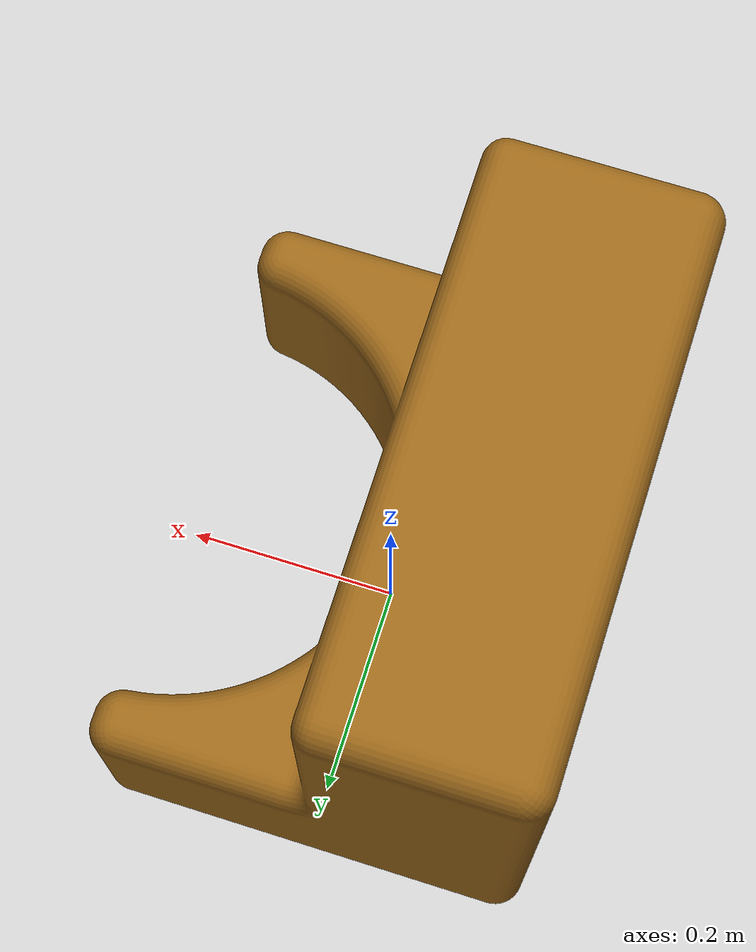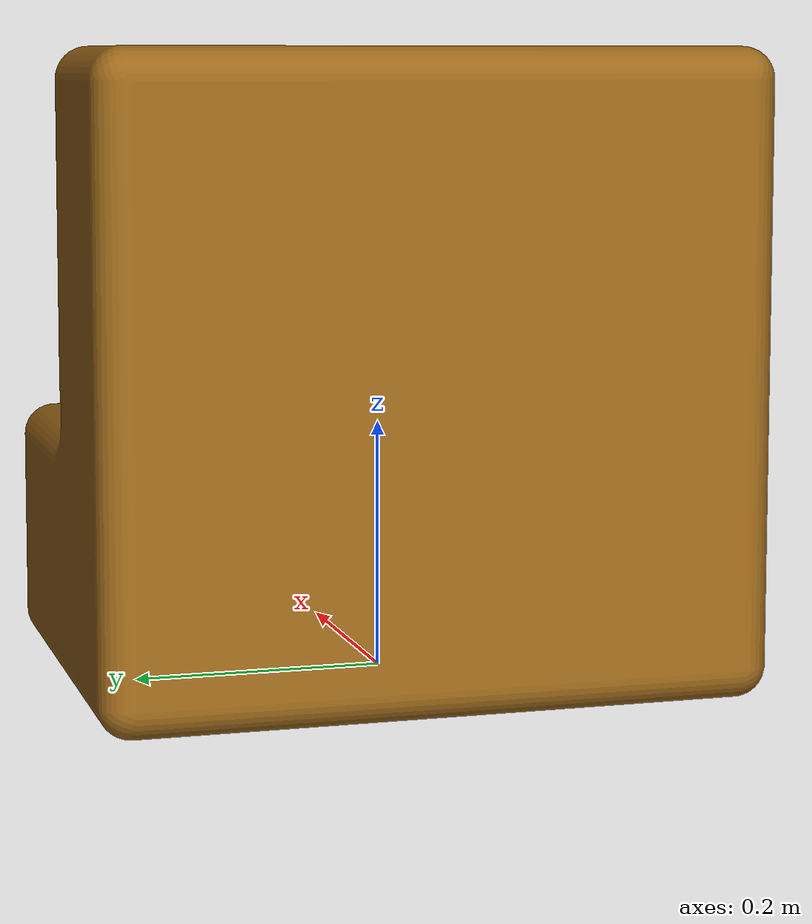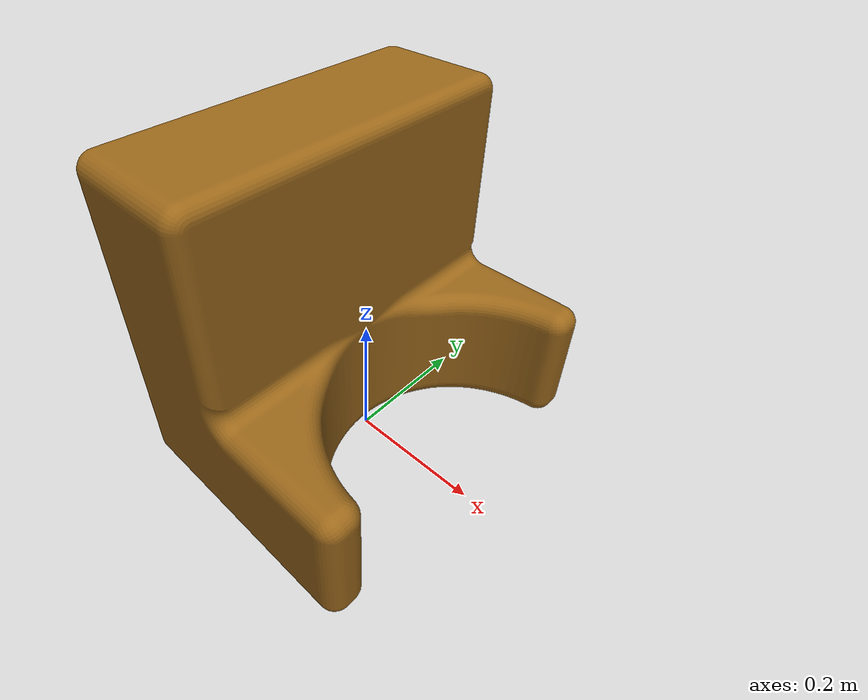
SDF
<?xml version="1.0" ?>
<sdf version="1.6">
  <model name="Docking_Station">
    <link name="link">
      <inertial>
        <mass>1</mass>
      </inertial>
      <collision name="collision">
        <geometry>
          <mesh>
            <uri>model://Docking_Station/meshes/Docking_Station.stl</uri>
            <scale>0.001 0.001 0.001</scale>
          </mesh>
        </geometry>
      </collision>
      <visual name="visual">
        <geometry>
          <mesh>
            <uri>model://Docking_Station/meshes/Docking_Station.stl</uri>
            <scale>0.001 0.001 0.001</scale>
          </mesh>
        </geometry>
        <material>
          <ambient>0.6 0.4 0.1 1.0</ambient> <!-- Mud yellow ambient color -->
          <diffuse>0.6 0.4 0.1 1.0</diffuse> <!-- Mud yellow diffuse color -->
          <specular>0.2 0.2 0.2 1.0</specular> <!-- Light gray specular highlights -->
          <emissive>0.0 0.0 0.0 1.0</emissive> <!-- No emissive color -->
        </material>
      </visual>
    </link>
    <static>1</static>
  </model>
</sdf>
